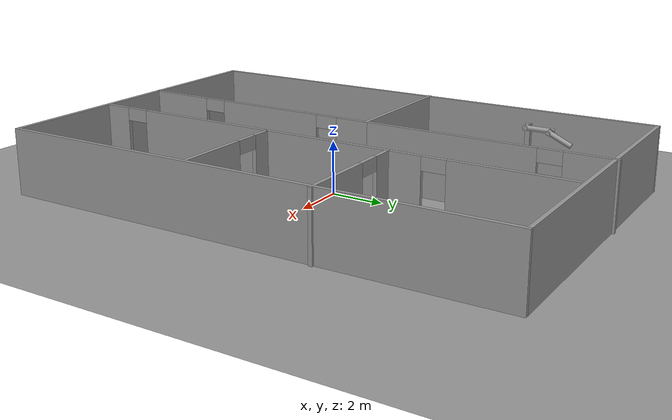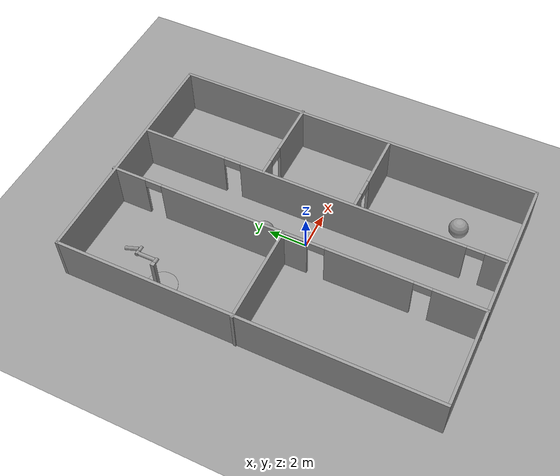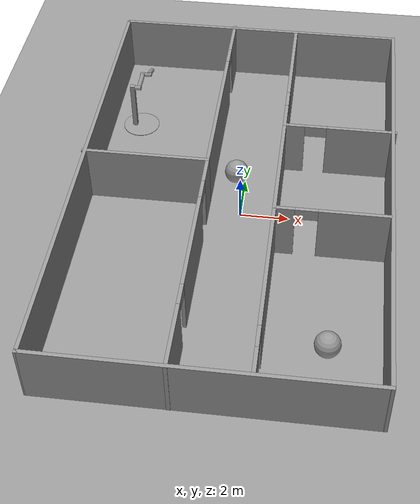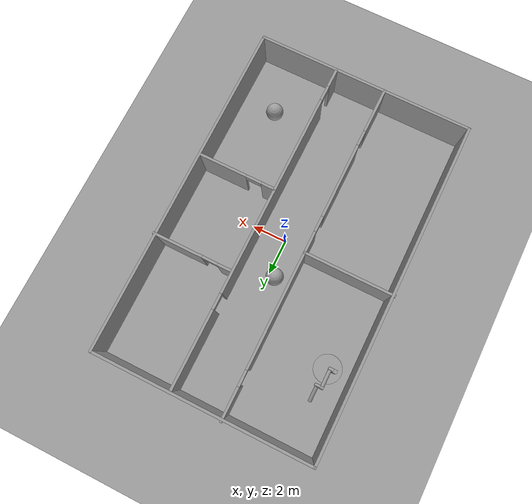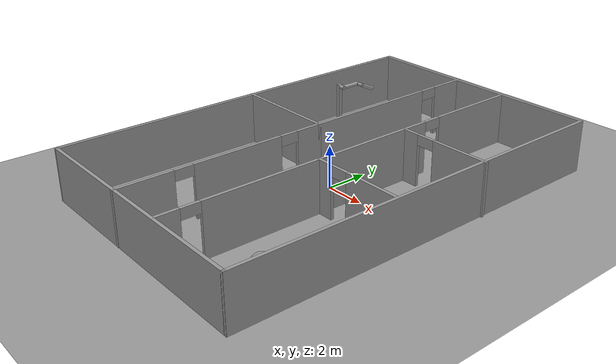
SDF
<sdf version="1.6">
 <world name="default">
  <light name="sun" type="directional">
   <pose>0 0 10 0 -0 0</pose>
   <diffuse>0.8 0.8 0.8 1</diffuse>
   <specular>0.2 0.2 0.2 1</specular>
   <attenuation>
    <range>1000</range>
    <constant>0.9</constant>
    <linear>0.01</linear>
    <quadratic>0.001</quadratic>
   </attenuation>
   <direction>0.5 0.1 -0.9</direction>
  </light>
  <scene><ambient>0.4 0.4 0.4 1</ambient><background>0.7 0.7 0.7 1</background><shadows>1</shadows></scene>
  <physics name="default_physics" default="0" type="ode">
   <max_step_size>0.01</max_step_size>
   <real_time_factor>1</real_time_factor>
   <real_time_update_rate>100</real_time_update_rate>
  </physics>
  <model name="ground_plane_0">
   <static>1</static>
   <link name="link">
    <collision name="collision">
     <geometry><plane><normal>0 0 1</normal><size>100 100</size></plane></geometry>
     <surface><friction><ode><mu>100</mu><mu2>50</mu2></ode></friction></surface>
    </collision>
    <visual name="visual">
     <cast_shadows>0</cast_shadows>
     <geometry><plane><normal>0 0 1</normal><size>100 100</size></plane></geometry>
     <material>
      <script><uri>file://media/materials/scripts/gazebo.material</uri><name>Gazebo/Grey</name></script>
     </material>
    </visual>
    <velocity_decay><linear>0</linear><angular>0</angular></velocity_decay>
   </link>
   <pose>0.497681 0 0 0 -0 0</pose>
  </model>
  <gravity>0 0 -9.8</gravity>
  <magnetic_field>6e-06 2.3e-05 -4.2e-05</magnetic_field>
  <atmosphere type="adiabatic"/>
  <spherical_coordinates>
   <surface_model>EARTH_WGS84</surface_model>
   <latitude_deg>0</latitude_deg>
   <longitude_deg>0</longitude_deg>
   <elevation>0</elevation>
   <heading_deg>0</heading_deg>
  </spherical_coordinates>
  <model name="lab_model">
   <pose>-0.19247 0.15959 0 0 -0 0</pose>
   <link name="Wall_1">
    <collision name="Wall_1_Collision">
     <geometry><box><size>12.5 0.15 2.5</size></box></geometry>
     <pose>0 0 1.25 0 -0 0</pose>
    </collision>
    <visual name="Wall_1_Visual">
     <pose>0 0 1.25 0 -0 0</pose>
     <geometry><box><size>12.5 0.15 2.5</size></box></geometry>
     <material>
      <script><uri>file://media/materials/scripts/gazebo.material</uri><name>Gazebo/Grey</name></script>
      <ambient>1 1 1 1</ambient>
     </material>
    </visual>
    <pose>-0.072071 9.63885 0 0 -0 0</pose>
   </link>
   <link name="Wall_10">
    <collision name="Wall_10_Collision">
     <geometry><box><size>5.25 0.15 2.5</size></box></geometry>
     <pose>0 0 1.25 0 -0 0</pose>
    </collision>
    <visual name="Wall_10_Visual">
     <pose>0 0 1.25 0 -0 0</pose>
     <geometry><box><size>5.25 0.15 2.5</size></box></geometry>
     <material>
      <script><uri>file://media/materials/scripts/gazebo.material</uri><name>Gazebo/Grey</name></script>
      <ambient>1 1 1 1</ambient>
     </material>
    </visual>
    <pose>-3.7548 0.375 0 0 -0 0</pose>
   </link>
   <link name="Wall_11">
    <pose>-1.2048 -4.675 0 0 0 -1.5708</pose>
    <visual name="Wall_11_Visual_0">
     <pose>-4.46129 0 1.25 0 -0 0</pose>
     <geometry><box><size>1.32741 0.15 2.5</size></box></geometry>
     <material>
      <script><uri>file://media/materials/scripts/gazebo.material</uri><name>Gazebo/Grey</name></script>
      <ambient>1 1 1 1</ambient>
     </material>
    </visual>
    <collision name="Wall_11_Collision_0">
     <geometry><box><size>1.32741 0.15 2.5</size></box></geometry>
     <pose>-4.46129 0 1.25 0 -0 0</pose>
    </collision>
    <visual name="Wall_11_Visual_1">
     <pose>-0.687567 0 1.25 0 -0 0</pose>
     <geometry><box><size>4.42004 0.15 2.5</size></box></geometry>
     <material>
      <script><uri>file://media/materials/scripts/gazebo.material</uri><name>Gazebo/Grey</name></script>
      <ambient>1 1 1 1</ambient>
     </material>
    </visual>
    <collision name="Wall_11_Collision_1">
     <geometry><box><size>4.42004 0.15 2.5</size></box></geometry>
     <pose>-0.687567 0 1.25 0 -0 0</pose>
    </collision>
    <visual name="Wall_11_Visual_2">
     <pose>3.77373 0 1.25 0 -0 0</pose>
     <geometry><box><size>2.70255 0.15 2.5</size></box></geometry>
     <material>
      <script><uri>file://media/materials/scripts/gazebo.material</uri><name>Gazebo/Grey</name></script>
      <ambient>1 1 1 1</ambient>
     </material>
    </visual>
    <collision name="Wall_11_Collision_2">
     <geometry><box><size>2.70255 0.15 2.5</size></box></geometry>
     <pose>3.77373 0 1.25 0 -0 0</pose>
    </collision>
    <visual name="Wall_11_Visual_3">
     <pose>-3.34759 0 2.25 0 -0 0</pose>
     <geometry><box><size>0.9 0.15 0.5</size></box></geometry>
     <material>
      <script><uri>file://media/materials/scripts/gazebo.material</uri><name>Gazebo/Grey</name></script>
      <ambient>1 1 1 1</ambient>
     </material>
    </visual>
    <collision name="Wall_11_Collision_3">
     <geometry><box><size>0.9 0.15 0.5</size></box></geometry>
     <pose>-3.34759 0 2.25 0 -0 0</pose>
    </collision>
    <visual name="Wall_11_Visual_4">
     <pose>1.97245 0 2.25 0 -0 0</pose>
     <geometry><box><size>0.9 0.15 0.5</size></box></geometry>
     <material>
      <script><uri>file://media/materials/scripts/gazebo.material</uri><name>Gazebo/Grey</name></script>
      <ambient>1 1 1 1</ambient>
     </material>
    </visual>
    <collision name="Wall_11_Collision_4">
     <geometry><box><size>0.9 0.15 0.5</size></box></geometry>
     <pose>1.97245 0 2.25 0 -0 0</pose>
    </collision>
   </link>
   <link name="Wall_13">
    <pose>1.70406 -0.062267 0 0 -0 1.5708</pose>
    <visual name="Wall_13_Visual_0">
     <pose>-9.08213 0 1.25 0 -0 0</pose>
     <geometry><box><size>1.08574 0.15 2.5</size></box></geometry>
     <material>
      <script><uri>file://media/materials/scripts/gazebo.material</uri><name>Gazebo/Grey</name></script>
      <ambient>1 1 1 1</ambient>
     </material>
    </visual>
    <collision name="Wall_13_Collision_0">
     <geometry><box><size>1.08574 0.15 2.5</size></box></geometry>
     <pose>-9.08213 0 1.25 0 -0 0</pose>
    </collision>
    <visual name="Wall_13_Visual_1">
     <pose>-1.69861 0 1.25 0 -0 0</pose>
     <geometry><box><size>11.8813 0.15 2.5</size></box></geometry>
     <material>
      <script><uri>file://media/materials/scripts/gazebo.material</uri><name>Gazebo/Grey</name></script>
      <ambient>1 1 1 1</ambient>
     </material>
    </visual>
    <collision name="Wall_13_Collision_1">
     <geometry><box><size>11.8813 0.15 2.5</size></box></geometry>
     <pose>-1.69861 0 1.25 0 -0 0</pose>
    </collision>
    <visual name="Wall_13_Visual_2">
     <pose>7.38352 0 1.25 0 -0 0</pose>
     <geometry><box><size>4.48295 0.15 2.5</size></box></geometry>
     <material>
      <script><uri>file://media/materials/scripts/gazebo.material</uri><name>Gazebo/Grey</name></script>
      <ambient>1 1 1 1</ambient>
     </material>
    </visual>
    <collision name="Wall_13_Collision_2">
     <geometry><box><size>4.48295 0.15 2.5</size></box></geometry>
     <pose>7.38352 0 1.25 0 -0 0</pose>
    </collision>
    <visual name="Wall_13_Visual_3">
     <pose>-8.08926 0 2.25 0 -0 0</pose>
     <geometry><box><size>0.9 0.15 0.5</size></box></geometry>
     <material>
      <script><uri>file://media/materials/scripts/gazebo.material</uri><name>Gazebo/Grey</name></script>
      <ambient>1 1 1 1</ambient>
     </material>
    </visual>
    <collision name="Wall_13_Collision_3">
     <geometry><box><size>0.9 0.15 0.5</size></box></geometry>
     <pose>-8.08926 0 2.25 0 -0 0</pose>
    </collision>
    <visual name="Wall_13_Visual_4">
     <pose>4.69205 0 2.25 0 -0 0</pose>
     <geometry><box><size>0.9 0.15 0.5</size></box></geometry>
     <material>
      <script><uri>file://media/materials/scripts/gazebo.material</uri><name>Gazebo/Grey</name></script>
      <ambient>1 1 1 1</ambient>
     </material>
    </visual>
    <collision name="Wall_13_Collision_4">
     <geometry><box><size>0.9 0.15 0.5</size></box></geometry>
     <pose>4.69205 0 2.25 0 -0 0</pose>
    </collision>
   </link>
   <link name="Wall_15">
    <pose>3.92121 -1.99788 0 0 -0 0</pose>
    <visual name="Wall_15_Visual_0">
     <pose>-1.83655 0 1.25 0 -0 0</pose>
     <geometry><box><size>0.826894 0.15 2.5</size></box></geometry>
     <material>
      <script><uri>file://media/materials/scripts/gazebo.material</uri><name>Gazebo/Grey</name></script>
      <ambient>1 1 1 1</ambient>
     </material>
    </visual>
    <collision name="Wall_15_Collision_0">
     <geometry><box><size>0.826894 0.15 2.5</size></box></geometry>
     <pose>-1.83655 0 1.25 0 -0 0</pose>
    </collision>
    <visual name="Wall_15_Visual_1">
     <pose>0.863447 0 1.25 0 -0 0</pose>
     <geometry><box><size>2.77311 0.15 2.5</size></box></geometry>
     <material>
      <script><uri>file://media/materials/scripts/gazebo.material</uri><name>Gazebo/Grey</name></script>
      <ambient>1 1 1 1</ambient>
     </material>
    </visual>
    <collision name="Wall_15_Collision_1">
     <geometry><box><size>2.77311 0.15 2.5</size></box></geometry>
     <pose>0.863447 0 1.25 0 -0 0</pose>
    </collision>
    <visual name="Wall_15_Visual_2">
     <pose>-0.973106 0 2.25 0 -0 0</pose>
     <geometry><box><size>0.9 0.15 0.5</size></box></geometry>
     <material>
      <script><uri>file://media/materials/scripts/gazebo.material</uri><name>Gazebo/Grey</name></script>
      <ambient>1 1 1 1</ambient>
     </material>
    </visual>
    <collision name="Wall_15_Collision_2">
     <geometry><box><size>0.9 0.15 0.5</size></box></geometry>
     <pose>-0.973106 0 2.25 0 -0 0</pose>
    </collision>
   </link>
   <link name="Wall_17">
    <pose>4.0048 2.9138 0 0 -0 0</pose>
    <visual name="Wall_17_Visual_0">
     <pose>-1.91008 0 1.25 0 -0 0</pose>
     <geometry><box><size>0.929836 0.15 2.5</size></box></geometry>
     <material>
      <script><uri>file://media/materials/scripts/gazebo.material</uri><name>Gazebo/Grey</name></script>
      <ambient>1 1 1 1</ambient>
     </material>
    </visual>
    <collision name="Wall_17_Collision_0">
     <geometry><box><size>0.929836 0.15 2.5</size></box></geometry>
     <pose>-1.91008 0 1.25 0 -0 0</pose>
    </collision>
    <visual name="Wall_17_Visual_1">
     <pose>0.914918 0 1.25 0 -0 0</pose>
     <geometry><box><size>2.92016 0.15 2.5</size></box></geometry>
     <material>
      <script><uri>file://media/materials/scripts/gazebo.material</uri><name>Gazebo/Grey</name></script>
      <ambient>1 1 1 1</ambient>
     </material>
    </visual>
    <collision name="Wall_17_Collision_1">
     <geometry><box><size>2.92016 0.15 2.5</size></box></geometry>
     <pose>0.914918 0 1.25 0 -0 0</pose>
    </collision>
    <visual name="Wall_17_Visual_2">
     <pose>-0.995164 0 2.25 0 -0 0</pose>
     <geometry><box><size>0.9 0.15 0.5</size></box></geometry>
     <material>
      <script><uri>file://media/materials/scripts/gazebo.material</uri><name>Gazebo/Grey</name></script>
      <ambient>1 1 1 1</ambient>
     </material>
    </visual>
    <collision name="Wall_17_Collision_2">
     <geometry><box><size>0.9 0.15 0.5</size></box></geometry>
     <pose>-0.995164 0 2.25 0 -0 0</pose>
    </collision>
   </link>
   <link name="Wall_19">
    <pose>-1.2048 5.05 0 0 -0 1.5708</pose>
    <visual name="Wall_19_Visual_0">
     <pose>-1.3962 0 1.25 0 -0 0</pose>
     <geometry><box><size>6.7076 0.15 2.5</size></box></geometry>
     <material>
      <script><uri>file://media/materials/scripts/gazebo.material</uri><name>Gazebo/Grey</name></script>
      <ambient>1 1 1 1</ambient>
     </material>
    </visual>
    <collision name="Wall_19_Collision_0">
     <geometry><box><size>6.7076 0.15 2.5</size></box></geometry>
     <pose>-1.3962 0 1.25 0 -0 0</pose>
    </collision>
    <visual name="Wall_19_Visual_1">
     <pose>3.8038 0 1.25 0 -0 0</pose>
     <geometry><box><size>1.8924 0.15 2.5</size></box></geometry>
     <material>
      <script><uri>file://media/materials/scripts/gazebo.material</uri><name>Gazebo/Grey</name></script>
      <ambient>1 1 1 1</ambient>
     </material>
    </visual>
    <collision name="Wall_19_Collision_1">
     <geometry><box><size>1.8924 0.15 2.5</size></box></geometry>
     <pose>3.8038 0 1.25 0 -0 0</pose>
    </collision>
    <visual name="Wall_19_Visual_2">
     <pose>2.4076 0 2.25 0 -0 0</pose>
     <geometry><box><size>0.9 0.15 0.5</size></box></geometry>
     <material>
      <script><uri>file://media/materials/scripts/gazebo.material</uri><name>Gazebo/Grey</name></script>
      <ambient>1 1 1 1</ambient>
     </material>
    </visual>
    <collision name="Wall_19_Collision_2">
     <geometry><box><size>0.9 0.15 0.5</size></box></geometry>
     <pose>2.4076 0 2.25 0 -0 0</pose>
    </collision>
   </link>
   <link name="Wall_5">
    <collision name="Wall_5_Collision">
     <geometry><box><size>19.5 0.15 2.5</size></box></geometry>
     <pose>0 0 1.25 0 -0 0</pose>
    </collision>
    <visual name="Wall_5_Visual">
     <pose>0 0 1.25 0 -0 0</pose>
     <geometry><box><size>19.5 0.15 2.5</size></box></geometry>
     <material>
      <script><uri>file://media/materials/scripts/gazebo.material</uri><name>Gazebo/Grey</name></script>
      <ambient>1 1 1 1</ambient>
     </material>
    </visual>
    <pose>-6.24707 -0.036147 0 0 0 -1.5708</pose>
   </link>
   <link name="Wall_6">
    <collision name="Wall_6_Collision">
     <geometry><box><size>12.6048 0.15 2.5</size></box></geometry>
     <pose>0 0 1.25 0 -0 0</pose>
    </collision>
    <visual name="Wall_6_Visual">
     <pose>0 0 1.25 0 -0 0</pose>
     <geometry><box><size>12.6048 0.15 2.5</size></box></geometry>
     <material>
      <script><uri>file://media/materials/scripts/gazebo.material</uri><name>Gazebo/Grey</name></script>
      <ambient>1 1 1 1</ambient>
     </material>
    </visual>
    <pose>-0.019677 -9.71185 0 0 0 -0.000113</pose>
   </link>
   <link name="Wall_7">
    <collision name="Wall_7_Collision">
     <geometry><box><size>19.5 0.15 2.5</size></box></geometry>
     <pose>0 0 1.25 0 -0 0</pose>
    </collision>
    <visual name="Wall_7_Visual">
     <pose>0 0 1.25 0 -0 0</pose>
     <geometry><box><size>19.5 0.15 2.5</size></box></geometry>
     <material>
      <script><uri>file://media/materials/scripts/gazebo.material</uri><name>Gazebo/Grey</name></script>
      <ambient>1 1 1 1</ambient>
     </material>
    </visual>
    <pose>6.22521 -0.03755 0 0 -0 1.5708</pose>
   </link>
   <static>1</static>
  </model>
  <model name="ground_plane">
   <static>1</static>
   <link name="link">
    <collision name="collision">
     <geometry><plane><normal>0 0 1</normal><size>100 100</size></plane></geometry>
     <surface><friction><ode><mu>100</mu><mu2>50</mu2></ode></friction></surface>
    </collision>
    <visual name="visual">
     <cast_shadows>0</cast_shadows>
     <geometry><plane><normal>0 0 1</normal><size>100 100</size></plane></geometry>
     <material>
      <script><uri>file://media/materials/scripts/gazebo.material</uri><name>Gazebo/Grey</name></script>
     </material>
    </visual>
   </link>
   <pose>-3.15561 -4.53915 0 0 -0 0</pose>
  </model>
  <model name="double_pendulum_with_base">
   <link name="base">
    <inertial>
     <mass>100</mass>
     <inertia><ixx>1</ixx><ixy>0</ixy><ixz>0</ixz><iyy>1</iyy><iyz>0</iyz><izz>1</izz></inertia>
    </inertial>
    <visual name="vis_plate_on_ground">
     <pose>0 0 0.01 0 -0 0</pose>
     <geometry><cylinder><radius>0.8</radius><length>0.02</length></cylinder></geometry>
     <material>
      <script><uri>file://media/materials/scripts/gazebo.material</uri><name>Gazebo/Grey</name></script>
     </material>
    </visual>
    <visual name="vis_pole">
     <pose>-0.275 0 1.1 0 -0 0</pose>
     <geometry><box><size>0.2 0.2 2.2</size></box></geometry>
     <material>
      <script><uri>file://media/materials/scripts/gazebo.material</uri><name>Gazebo/Grey</name></script>
     </material>
    </visual>
    <collision name="col_plate_on_ground">
     <pose>0 0 0.01 0 -0 0</pose>
     <geometry><cylinder><radius>0.8</radius><length>0.02</length></cylinder></geometry>
    </collision>
    <collision name="col_pole">
     <pose>-0.275 0 1.1 0 -0 0</pose>
     <geometry><box><size>0.2 0.2 2.2</size></box></geometry>
    </collision>
   </link>
   <link name="upper_link">
    <pose>0 0 2.1 -1.5708 0 0</pose>
    <inertial>
     <pose>0 0 0.5 0 -0 0</pose>
     <inertia><ixx>1</ixx><ixy>0</ixy><ixz>0</ixz><iyy>1</iyy><iyz>0</iyz><izz>1</izz></inertia>
     <mass>1</mass>
    </inertial>
    <visual name="vis_upper_joint">
     <pose>-0.05 0 0 3.14159 1.57079 3.14159</pose>
     <geometry><cylinder><radius>0.1</radius><length>0.3</length></cylinder></geometry>
     <material>
      <script><uri>file://media/materials/scripts/gazebo.material</uri><name>Gazebo/Grey</name></script>
     </material>
    </visual>
    <visual name="vis_lower_joint">
     <pose>0 0 1 3.14159 1.57079 3.14159</pose>
     <geometry><cylinder><radius>0.1</radius><length>0.2</length></cylinder></geometry>
     <material>
      <script><uri>file://media/materials/scripts/gazebo.material</uri><name>Gazebo/Grey</name></script>
     </material>
    </visual>
    <visual name="vis_cylinder">
     <pose>0 0 0.5 0 -0 0</pose>
     <geometry><cylinder><radius>0.1</radius><length>0.9</length></cylinder></geometry>
     <material>
      <script><uri>file://media/materials/scripts/gazebo.material</uri><name>Gazebo/Grey</name></script>
     </material>
    </visual>
    <collision name="col_upper_joint">
     <pose>-0.05 0 0 3.14159 1.57079 3.14159</pose>
     <geometry><cylinder><radius>0.1</radius><length>0.3</length></cylinder></geometry>
    </collision>
    <collision name="col_lower_joint">
     <pose>0 0 1 3.14159 1.57079 3.14159</pose>
     <geometry><cylinder><radius>0.1</radius><length>0.2</length></cylinder></geometry>
    </collision>
    <collision name="col_cylinder">
     <pose>0 0 0.5 0 -0 0</pose>
     <geometry><cylinder><radius>0.1</radius><length>0.9</length></cylinder></geometry>
    </collision>
   </link>
   <link name="lower_link">
    <pose>0.25 1 2.1 -2 0 0</pose>
    <inertial>
     <pose>0 0 0.5 0 -0 0</pose>
     <inertia><ixx>1</ixx><ixy>0</ixy><ixz>0</ixz><iyy>1</iyy><iyz>0</iyz><izz>1</izz></inertia>
     <mass>1</mass>
    </inertial>
    <visual name="vis_lower_joint">
     <pose>0 0 0 3.14159 1.57079 3.14159</pose>
     <geometry><cylinder><radius>0.08</radius><length>0.3</length></cylinder></geometry>
     <material>
      <script><uri>file://media/materials/scripts/gazebo.material</uri><name>Gazebo/Grey</name></script>
     </material>
    </visual>
    <visual name="vis_cylinder">
     <pose>0 0 0.5 0 -0 0</pose>
     <geometry><cylinder><radius>0.1</radius><length>0.9</length></cylinder></geometry>
     <material>
      <script><uri>file://media/materials/scripts/gazebo.material</uri><name>Gazebo/Grey</name></script>
     </material>
    </visual>
    <collision name="col_lower_joint">
     <pose>0 0 0 3.14159 1.57079 3.14159</pose>
     <geometry><cylinder><radius>0.08</radius><length>0.3</length></cylinder></geometry>
    </collision>
    <collision name="col_cylinder">
     <pose>0 0 0.5 0 -0 0</pose>
     <geometry><cylinder><radius>0.1</radius><length>0.9</length></cylinder></geometry>
    </collision>
   </link>
   <joint name="upper_joint" type="revolute">
    <parent>base</parent>
    <child>upper_link</child>
    <axis>
     <xyz>1 0 0</xyz>
     <use_parent_model_frame>1</use_parent_model_frame>
     <limit><lower>-1e+16</lower><upper>1e+16</upper></limit>
     <dynamics><spring_reference>0</spring_reference><spring_stiffness>0</spring_stiffness></dynamics>
    </axis>
   </joint>
   <joint name="lower_joint" type="revolute">
    <parent>upper_link</parent>
    <child>lower_link</child>
    <axis>
     <xyz>1 0 0</xyz>
     <use_parent_model_frame>1</use_parent_model_frame>
     <limit><lower>-1e+16</lower><upper>1e+16</upper></limit>
     <dynamics><spring_reference>0</spring_reference><spring_stiffness>0</spring_stiffness></dynamics>
    </axis>
   </joint>
   <pose>-5.1478 5.27093 -0.000689 -0.002895 0.002282 0.007032</pose>
  </model>
  <model name="unit_sphere_0">
   <pose>3.91303 -6.57864 0.49912 0 -0 0</pose>
   <link name="link">
    <inertial>
     <mass>1</mass>
     <inertia><ixx>0.1</ixx><ixy>0</ixy><ixz>0</ixz><iyy>0.1</iyy><iyz>0</iyz><izz>0.1</izz></inertia>
    </inertial>
    <collision name="collision"><geometry><sphere><radius>0.5</radius></sphere></geometry></collision>
    <visual name="visual">
     <geometry><sphere><radius>0.5</radius></sphere></geometry>
     <material>
      <script><name>Gazebo/Grey</name><uri>file://media/materials/scripts/gazebo.material</uri></script>
     </material>
    </visual>
   </link>
  </model>
  <model name="unit_sphere_1">
   <pose>-0.390737 2.10568 0.49912 0 -0 0</pose>
   <link name="link">
    <inertial>
     <mass>1</mass>
     <inertia><ixx>0.1</ixx><ixy>0</ixy><ixz>0</ixz><iyy>0.1</iyy><iyz>0</iyz><izz>0.1</izz></inertia>
    </inertial>
    <collision name="collision"><geometry><sphere><radius>0.5</radius></sphere></geometry></collision>
    <visual name="visual">
     <geometry><sphere><radius>0.5</radius></sphere></geometry>
     <material>
      <script><name>Gazebo/Grey</name><uri>file://media/materials/scripts/gazebo.material</uri></script>
     </material>
    </visual>
   </link>
  </model>
 </world>
</sdf>
